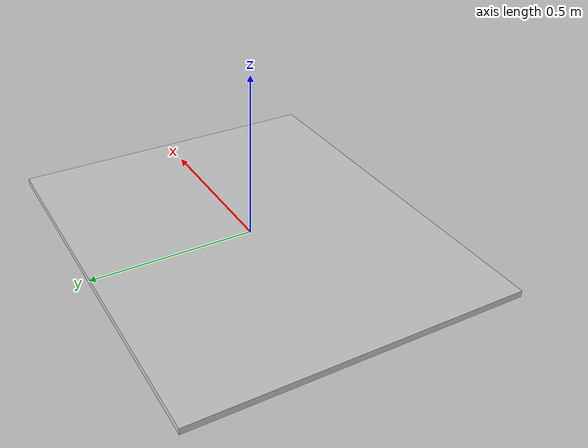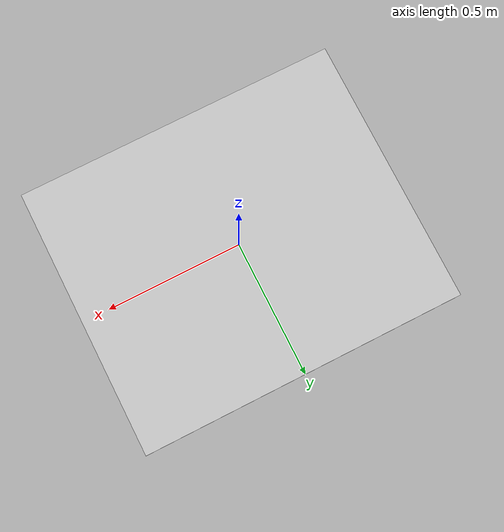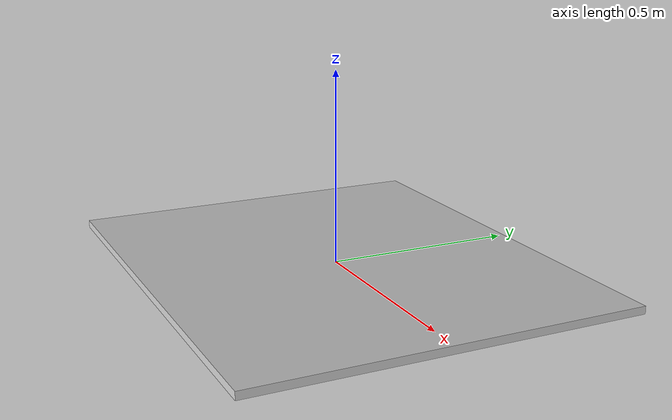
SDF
<?xml version="1.0"?>
<sdf version="1.7">
  <model name="airo_cart">
    <link name="table">
      <visual name="visual">
        <pose>0 0 0 0 0 0</pose>
        <geometry>
          <box>
            <size>1.2 1.0 0.02</size>
          </box>
        </geometry>
        <material>
          <diffuse>0.8 0.8 0.8 1.0</diffuse>
        </material>
      </visual>
      <collision name="collision">
        <pose>0 0 0 0 0 0</pose>
        <geometry>
          <box>
            <size>1.2 1.0 0.02</size>
          </box>
        </geometry>
      </collision>
    </link>
    <frame name="table_center">
      <pose relative_to="table">0 0 0.01 0 0 0</pose>
    </frame>
    <frame name="table_left">
      <pose relative_to="table_center">-0.40 0 0 0 0 0</pose>
    </frame>
    <frame name="table_right">
      <pose relative_to="table_center">0.40 0 0 0 0 0</pose>
    </frame>
  </model>
</sdf>
